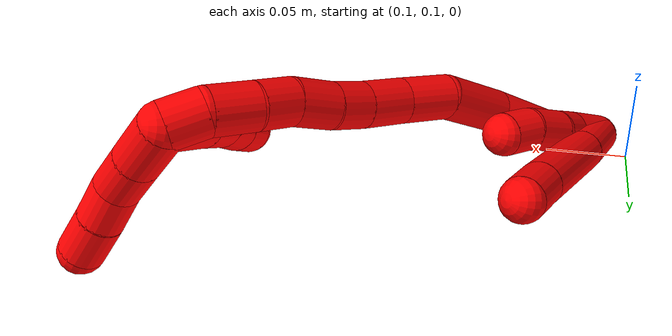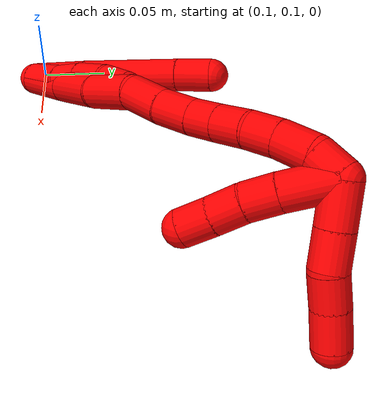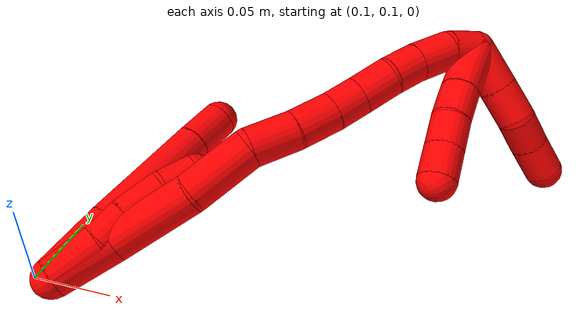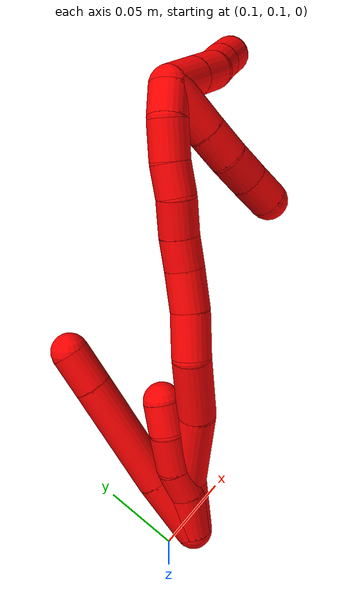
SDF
<sdf version="1.7">
 <world name="default">
  <model name="photoneo_s_sensor">
   <static>1</static>
   <pose>0 0 2 1.57079 1.57079 3.14159</pose>
   <link name="link">
    <inertial><mass>0.1</mass></inertial>
    <sensor name="sensor" type="depth">
     <update_rate>30</update_rate>
     <camera>
      <horizontal_fov>1.22</horizontal_fov>
      <image><width>1920</width><height>1200</height><format>B8G8R8</format></image>
      <clip><near>0.1</near><far>4</far></clip>
      <depth_camera><output>points</output></depth_camera>
     </camera>
     <plugin name="camera_plugin" filename="libgazebo_ros_depth_camera.so">
      <baseline>0.2</baseline>
      <alwaysOn>1</alwaysOn>
      <updateRate>0.0</updateRate>
      <cameraName>camera_ir</cameraName>
      <imageTopicName>/camera/color/image_raw</imageTopicName>
      <cameraInfoTopicName>/camera/color/camera_info</cameraInfoTopicName>
      <depthImageTopicName>/camera/depth/image_raw</depthImageTopicName>
      <depthImageCameraInfoTopicName>/camera/depth/camera_info</depthImageCameraInfoTopicName>
      <pointCloudTopicName>/camera/depth/points</pointCloudTopicName>
      <frameName>fr_optical</frameName>
      <pointCloudCutoff>0.1</pointCloudCutoff>
      <pointCloudCutoffMax>2.0</pointCloudCutoffMax>
      <distortionK1>0</distortionK1>
      <distortionK2>0</distortionK2>
      <distortionK3>0</distortionK3>
      <distortionT1>0</distortionT1>
      <distortionT2>0</distortionT2>
      <CxPrime>0</CxPrime>
      <Cx>0</Cx>
      <Cy>0</Cy>
      <focalLength>0</focalLength>
      <hackBaseline>0</hackBaseline>
     </plugin>
    </sensor>
   </link>
  </model>
  <model name="bin">
   <static>1</static>
   <link name="bottom">
    <collision name="collision-bottom">
     <pose>0 0 -0.01 0 -0 0</pose>
     <geometry><box><size>0.8 0.6 0.02</size></box></geometry>
     <surface>
      <friction><ode><mu>100</mu><mu2>100</mu2></ode></friction>
      <contact><collide_bitmask>65535</collide_bitmask></contact>
     </surface>
    </collision>
   </link>
   <link name="west_wall">
    <collision name="collision-west_wall">
     <pose>-0.41 0 0.1 0 -0 0</pose>
     <geometry><box><size>0.02 0.6 0.2</size></box></geometry>
     <surface>
      <friction><ode><mu>100</mu><mu2>100</mu2></ode></friction>
      <contact><collide_bitmask>65535</collide_bitmask></contact>
     </surface>
    </collision>
   </link>
   <link name="east_wall">
    <collision name="collision-east_wall">
     <pose>0.41 0 0.1 0 -0 0</pose>
     <geometry><box><size>0.02 0.6 0.2</size></box></geometry>
     <surface>
      <friction><ode><mu>100</mu><mu2>100</mu2></ode></friction>
      <contact><collide_bitmask>65535</collide_bitmask></contact>
     </surface>
    </collision>
   </link>
   <link name="south_wall">
    <collision name="collision-south_wall">
     <pose>0 -0.31 0.1 0 -0 0</pose>
     <geometry><box><size>0.8 0.02 0.2</size></box></geometry>
     <surface>
      <friction><ode><mu>100</mu><mu2>100</mu2></ode></friction>
      <contact><collide_bitmask>65535</collide_bitmask></contact>
     </surface>
    </collision>
   </link>
   <link name="north_wall">
    <collision name="collision-north_wall">
     <pose>0 0.31 0.1 0 -0 0</pose>
     <geometry><box><size>0.8 0.02 0.2</size></box></geometry>
     <surface>
      <friction><ode><mu>100</mu><mu2>100</mu2></ode></friction>
      <contact><collide_bitmask>65535</collide_bitmask></contact>
     </surface>
    </collision>
   </link>
  </model>
  <model name="2">
   <static>0</static>
   <link name="2">
    <collision name="collision-cylinder-e_1_2_8">
     <pose>-0.009327 -0.004561 0.019637 0.228221 -0.433336 -0.050445</pose>
     <geometry><cylinder><radius>0.0125</radius><length>0.044425</length></cylinder></geometry>
     <surface>
      <friction><ode><mu>1.16</mu><mu2>1.16</mu2><slip1>0</slip1><slip2>0</slip2></ode></friction>
      <contact><ode><kp>1e+06</kp><kd>1</kd><max_vel>0</max_vel><min_depth>0.001</min_depth></ode></contact>
     </surface>
    </collision>
    <visual name="visual-cylinder-e_1_2_8">
     <pose>-0.009327 -0.004561 0.019637 0.228221 -0.433336 -0.050445</pose>
     <geometry><cylinder><radius>0.0125</radius><length>0.044425</length></cylinder></geometry>
     <material><ambient>1 0 0 1</ambient></material>
    </visual>
    <collision name="collision-cylinder-e_2_8_9">
     <pose>-0.033545 -0.015985 0.075015 0.189716 -0.388379 -0.037419</pose>
     <geometry><cylinder><radius>0.0125</radius><length>0.078646</length></cylinder></geometry>
     <surface>
      <friction><ode><mu>1.16</mu><mu2>1.16</mu2><slip1>0</slip1><slip2>0</slip2></ode></friction>
      <contact><ode><kp>1e+06</kp><kd>1</kd><max_vel>0</max_vel><min_depth>0.001</min_depth></ode></contact>
     </surface>
    </collision>
    <visual name="visual-cylinder-e_2_8_9">
     <pose>-0.033545 -0.015985 0.075015 0.189716 -0.388379 -0.037419</pose>
     <geometry><cylinder><radius>0.0125</radius><length>0.078646</length></cylinder></geometry>
     <material><ambient>1 0 0 1</ambient></material>
    </visual>
    <collision name="collision-cylinder-e_3_9_6">
     <pose>-0.053892 -0.024905 0.122893 0.16787 -0.417151 -0.03561</pose>
     <geometry><cylinder><radius>0.0125</radius><length>0.026929</length></cylinder></geometry>
     <surface>
      <friction><ode><mu>1.16</mu><mu2>1.16</mu2><slip1>0</slip1><slip2>0</slip2></ode></friction>
      <contact><ode><kp>1e+06</kp><kd>1</kd><max_vel>0</max_vel><min_depth>0.001</min_depth></ode></contact>
     </surface>
    </collision>
    <visual name="visual-cylinder-e_3_9_6">
     <pose>-0.053892 -0.024905 0.122893 0.16787 -0.417151 -0.03561</pose>
     <geometry><cylinder><radius>0.0125</radius><length>0.026929</length></cylinder></geometry>
     <material><ambient>1 0 0 1</ambient></material>
    </visual>
    <collision name="collision-cylinder-e_1_2_10">
     <pose>0.000192 -0.001451 0.015579 0.092842 0.012246 0.000569</pose>
     <geometry><cylinder><radius>0.0125</radius><length>0.031295</length></cylinder></geometry>
     <surface>
      <friction><ode><mu>1.16</mu><mu2>1.16</mu2><slip1>0</slip1><slip2>0</slip2></ode></friction>
      <contact><ode><kp>1e+06</kp><kd>1</kd><max_vel>0</max_vel><min_depth>0.001</min_depth></ode></contact>
     </surface>
    </collision>
    <visual name="visual-cylinder-e_1_2_10">
     <pose>0.000192 -0.001451 0.015579 0.092842 0.012246 0.000569</pose>
     <geometry><cylinder><radius>0.0125</radius><length>0.031295</length></cylinder></geometry>
     <material><ambient>1 0 0 1</ambient></material>
    </visual>
    <collision name="collision-cylinder-e_2_10_11">
     <pose>-0.001246 -0.005367 0.041183 0.241152 -0.15649 -0.018999</pose>
     <geometry><cylinder><radius>0.0125</radius><length>0.020903</length></cylinder></geometry>
     <surface>
      <friction><ode><mu>1.16</mu><mu2>1.16</mu2><slip1>0</slip1><slip2>0</slip2></ode></friction>
      <contact><ode><kp>1e+06</kp><kd>1</kd><max_vel>0</max_vel><min_depth>0.001</min_depth></ode></contact>
     </surface>
    </collision>
    <visual name="visual-cylinder-e_2_10_11">
     <pose>-0.001246 -0.005367 0.041183 0.241152 -0.15649 -0.018999</pose>
     <geometry><cylinder><radius>0.0125</radius><length>0.020903</length></cylinder></geometry>
     <material><ambient>1 0 0 1</ambient></material>
    </visual>
    <collision name="collision-cylinder-e_3_11_12">
     <pose>-0.003078 -0.009035 0.064644 0.089284 -0.01509 -0.000674</pose>
     <geometry><cylinder><radius>0.0125</radius><length>0.026982</length></cylinder></geometry>
     <surface>
      <friction><ode><mu>1.16</mu><mu2>1.16</mu2><slip1>0</slip1><slip2>0</slip2></ode></friction>
      <contact><ode><kp>1e+06</kp><kd>1</kd><max_vel>0</max_vel><min_depth>0.001</min_depth></ode></contact>
     </surface>
    </collision>
    <visual name="visual-cylinder-e_3_11_12">
     <pose>-0.003078 -0.009035 0.064644 0.089284 -0.01509 -0.000674</pose>
     <geometry><cylinder><radius>0.0125</radius><length>0.026982</length></cylinder></geometry>
     <material><ambient>1 0 0 1</ambient></material>
    </visual>
    <collision name="collision-cylinder-e_4_12_5">
     <pose>-0.004548 -0.009294 0.088369 -0.091463 -0.121965 0.005588</pose>
     <geometry><cylinder><radius>0.0125</radius><length>0.02082</length></cylinder></geometry>
     <surface>
      <friction><ode><mu>1.16</mu><mu2>1.16</mu2><slip1>0</slip1><slip2>0</slip2></ode></friction>
      <contact><ode><kp>1e+06</kp><kd>1</kd><max_vel>0</max_vel><min_depth>0.001</min_depth></ode></contact>
     </surface>
    </collision>
    <visual name="visual-cylinder-e_4_12_5">
     <pose>-0.004548 -0.009294 0.088369 -0.091463 -0.121965 0.005588</pose>
     <geometry><cylinder><radius>0.0125</radius><length>0.02082</length></cylinder></geometry>
     <material><ambient>1 0 0 1</ambient></material>
    </visual>
    <collision name="collision-cylinder-e_1_2_13">
     <pose>0.000124 0.000237 0.019199 -0.012369 0.006435 -4e-05</pose>
     <geometry><cylinder><radius>0.0125</radius><length>0.038402</length></cylinder></geometry>
     <surface>
      <friction><ode><mu>1.16</mu><mu2>1.16</mu2><slip1>0</slip1><slip2>0</slip2></ode></friction>
      <contact><ode><kp>1e+06</kp><kd>1</kd><max_vel>0</max_vel><min_depth>0.001</min_depth></ode></contact>
     </surface>
    </collision>
    <visual name="visual-cylinder-e_1_2_13">
     <pose>0.000124 0.000237 0.019199 -0.012369 0.006435 -4e-05</pose>
     <geometry><cylinder><radius>0.0125</radius><length>0.038402</length></cylinder></geometry>
     <material><ambient>1 0 0 1</ambient></material>
    </visual>
    <collision name="collision-cylinder-e_2_13_14">
     <pose>0.007783 -0.001074 0.063728 0.061061 0.288656 0.008877</pose>
     <geometry><cylinder><radius>0.0125</radius><length>0.052944</length></cylinder></geometry>
     <surface>
      <friction><ode><mu>1.16</mu><mu2>1.16</mu2><slip1>0</slip1><slip2>0</slip2></ode></friction>
      <contact><ode><kp>1e+06</kp><kd>1</kd><max_vel>0</max_vel><min_depth>0.001</min_depth></ode></contact>
     </surface>
    </collision>
    <visual name="visual-cylinder-e_2_13_14">
     <pose>0.007783 -0.001074 0.063728 0.061061 0.288656 0.008877</pose>
     <geometry><cylinder><radius>0.0125</radius><length>0.052944</length></cylinder></geometry>
     <material><ambient>1 0 0 1</ambient></material>
    </visual>
    <collision name="collision-cylinder-e_3_14_15">
     <pose>0.017706 -0.005501 0.109845 0.137628 0.11329 0.007817</pose>
     <geometry><cylinder><radius>0.0125</radius><length>0.042243</length></cylinder></geometry>
     <surface>
      <friction><ode><mu>1.16</mu><mu2>1.16</mu2><slip1>0</slip1><slip2>0</slip2></ode></friction>
      <contact><ode><kp>1e+06</kp><kd>1</kd><max_vel>0</max_vel><min_depth>0.001</min_depth></ode></contact>
     </surface>
    </collision>
    <visual name="visual-cylinder-e_3_14_15">
     <pose>0.017706 -0.005501 0.109845 0.137628 0.11329 0.007817</pose>
     <geometry><cylinder><radius>0.0125</radius><length>0.042243</length></cylinder></geometry>
     <material><ambient>1 0 0 1</ambient></material>
    </visual>
    <collision name="collision-cylinder-e_4_15_16">
     <pose>0.020123 -0.00588 0.145281 -0.169054 0.001956 -0.000166</pose>
     <geometry><cylinder><radius>0.0125</radius><length>0.02972</length></cylinder></geometry>
     <surface>
      <friction><ode><mu>1.16</mu><mu2>1.16</mu2><slip1>0</slip1><slip2>0</slip2></ode></friction>
      <contact><ode><kp>1e+06</kp><kd>1</kd><max_vel>0</max_vel><min_depth>0.001</min_depth></ode></contact>
     </surface>
    </collision>
    <visual name="visual-cylinder-e_4_15_16">
     <pose>0.020123 -0.00588 0.145281 -0.169054 0.001956 -0.000166</pose>
     <geometry><cylinder><radius>0.0125</radius><length>0.02972</length></cylinder></geometry>
     <material><ambient>1 0 0 1</ambient></material>
    </visual>
    <collision name="collision-cylinder-e_5_16_17">
     <pose>0.019197 -0.002261 0.172995 -0.085465 -0.072696 0.00311</pose>
     <geometry><cylinder><radius>0.0125</radius><length>0.026299</length></cylinder></geometry>
     <surface>
      <friction><ode><mu>1.16</mu><mu2>1.16</mu2><slip1>0</slip1><slip2>0</slip2></ode></friction>
      <contact><ode><kp>1e+06</kp><kd>1</kd><max_vel>0</max_vel><min_depth>0.001</min_depth></ode></contact>
     </surface>
    </collision>
    <visual name="visual-cylinder-e_5_16_17">
     <pose>0.019197 -0.002261 0.172995 -0.085465 -0.072696 0.00311</pose>
     <geometry><cylinder><radius>0.0125</radius><length>0.026299</length></cylinder></geometry>
     <material><ambient>1 0 0 1</ambient></material>
    </visual>
    <collision name="collision-cylinder-e_6_17_18">
     <pose>0.017746 -0.001075 0.196163 -0.00651 -0.049008 0.00016</pose>
     <geometry><cylinder><radius>0.0125</radius><length>0.020227</length></cylinder></geometry>
     <surface>
      <friction><ode><mu>1.16</mu><mu2>1.16</mu2><slip1>0</slip1><slip2>0</slip2></ode></friction>
      <contact><ode><kp>1e+06</kp><kd>1</kd><max_vel>0</max_vel><min_depth>0.001</min_depth></ode></contact>
     </surface>
    </collision>
    <visual name="visual-cylinder-e_6_17_18">
     <pose>0.017746 -0.001075 0.196163 -0.00651 -0.049008 0.00016</pose>
     <geometry><cylinder><radius>0.0125</radius><length>0.020227</length></cylinder></geometry>
     <material><ambient>1 0 0 1</ambient></material>
    </visual>
    <collision name="collision-cylinder-e_7_18_19">
     <pose>0.018045 -0.001305 0.21814 0.024884 0.066782 0.000831</pose>
     <geometry><cylinder><radius>0.0125</radius><length>0.023811</length></cylinder></geometry>
     <surface>
      <friction><ode><mu>1.16</mu><mu2>1.16</mu2><slip1>0</slip1><slip2>0</slip2></ode></friction>
      <contact><ode><kp>1e+06</kp><kd>1</kd><max_vel>0</max_vel><min_depth>0.001</min_depth></ode></contact>
     </surface>
    </collision>
    <visual name="visual-cylinder-e_7_18_19">
     <pose>0.018045 -0.001305 0.21814 0.024884 0.066782 0.000831</pose>
     <geometry><cylinder><radius>0.0125</radius><length>0.023811</length></cylinder></geometry>
     <material><ambient>1 0 0 1</ambient></material>
    </visual>
    <collision name="collision-cylinder-e_8_19_20">
     <pose>0.017703 -0.00094 0.240345 -0.063924 -0.109353 0.0035</pose>
     <geometry><cylinder><radius>0.0125</radius><length>0.020826</length></cylinder></geometry>
     <surface>
      <friction><ode><mu>1.16</mu><mu2>1.16</mu2><slip1>0</slip1><slip2>0</slip2></ode></friction>
      <contact><ode><kp>1e+06</kp><kd>1</kd><max_vel>0</max_vel><min_depth>0.001</min_depth></ode></contact>
     </surface>
    </collision>
    <visual name="visual-cylinder-e_8_19_20">
     <pose>0.017703 -0.00094 0.240345 -0.063924 -0.109353 0.0035</pose>
     <geometry><cylinder><radius>0.0125</radius><length>0.020826</length></cylinder></geometry>
     <material><ambient>1 0 0 1</ambient></material>
    </visual>
    <collision name="collision-cylinder-e_9_20_21">
     <pose>0.016176 0.001759 0.262994 -0.163876 -0.031266 0.002568</pose>
     <geometry><cylinder><radius>0.0125</radius><length>0.024986</length></cylinder></geometry>
     <surface>
      <friction><ode><mu>1.16</mu><mu2>1.16</mu2><slip1>0</slip1><slip2>0</slip2></ode></friction>
      <contact><ode><kp>1e+06</kp><kd>1</kd><max_vel>0</max_vel><min_depth>0.001</min_depth></ode></contact>
     </surface>
    </collision>
    <visual name="visual-cylinder-e_9_20_21">
     <pose>0.016176 0.001759 0.262994 -0.163876 -0.031266 0.002568</pose>
     <geometry><cylinder><radius>0.0125</radius><length>0.024986</length></cylinder></geometry>
     <material><ambient>1 0 0 1</ambient></material>
    </visual>
    <collision name="collision-cylinder-e_10_21_1">
     <pose>0.014936 0.008525 0.284392 -0.480228 -0.082867 0.0203</pose>
     <geometry><cylinder><radius>0.0125</radius><length>0.020542</length></cylinder></geometry>
     <surface>
      <friction><ode><mu>1.16</mu><mu2>1.16</mu2><slip1>0</slip1><slip2>0</slip2></ode></friction>
      <contact><ode><kp>1e+06</kp><kd>1</kd><max_vel>0</max_vel><min_depth>0.001</min_depth></ode></contact>
     </surface>
    </collision>
    <visual name="visual-cylinder-e_10_21_1">
     <pose>0.014936 0.008525 0.284392 -0.480228 -0.082867 0.0203</pose>
     <geometry><cylinder><radius>0.0125</radius><length>0.020542</length></cylinder></geometry>
     <material><ambient>1 0 0 1</ambient></material>
    </visual>
    <collision name="collision-cylinder-e_1_1_22">
     <pose>0.014542 0.027588 0.294459 -1.50193 0.031771 -0.029656</pose>
     <geometry><cylinder><radius>0.0125</radius><length>0.028752</length></cylinder></geometry>
     <surface>
      <friction><ode><mu>1.16</mu><mu2>1.16</mu2><slip1>0</slip1><slip2>0</slip2></ode></friction>
      <contact><ode><kp>1e+06</kp><kd>1</kd><max_vel>0</max_vel><min_depth>0.001</min_depth></ode></contact>
     </surface>
    </collision>
    <visual name="visual-cylinder-e_1_1_22">
     <pose>0.014542 0.027588 0.294459 -1.50193 0.031771 -0.029656</pose>
     <geometry><cylinder><radius>0.0125</radius><length>0.028752</length></cylinder></geometry>
     <material><ambient>1 0 0 1</ambient></material>
    </visual>
    <collision name="collision-cylinder-e_2_22_23">
     <pose>0.01536 0.054141 0.296194 -1.50974 0.029472 -0.027726</pose>
     <geometry><cylinder><radius>0.0125</radius><length>0.024492</length></cylinder></geometry>
     <surface>
      <friction><ode><mu>1.16</mu><mu2>1.16</mu2><slip1>0</slip1><slip2>0</slip2></ode></friction>
      <contact><ode><kp>1e+06</kp><kd>1</kd><max_vel>0</max_vel><min_depth>0.001</min_depth></ode></contact>
     </surface>
    </collision>
    <visual name="visual-cylinder-e_2_22_23">
     <pose>0.01536 0.054141 0.296194 -1.50974 0.029472 -0.027726</pose>
     <geometry><cylinder><radius>0.0125</radius><length>0.024492</length></cylinder></geometry>
     <material><ambient>1 0 0 1</ambient></material>
    </visual>
    <collision name="collision-cylinder-e_3_23_24">
     <pose>0.013029 0.077049 0.298556 -1.42091 -0.244027 0.210211</pose>
     <geometry><cylinder><radius>0.0125</radius><length>0.022282</length></cylinder></geometry>
     <surface>
      <friction><ode><mu>1.16</mu><mu2>1.16</mu2><slip1>0</slip1><slip2>0</slip2></ode></friction>
      <contact><ode><kp>1e+06</kp><kd>1</kd><max_vel>0</max_vel><min_depth>0.001</min_depth></ode></contact>
     </surface>
    </collision>
    <visual name="visual-cylinder-e_3_23_24">
     <pose>0.013029 0.077049 0.298556 -1.42091 -0.244027 0.210211</pose>
     <geometry><cylinder><radius>0.0125</radius><length>0.022282</length></cylinder></geometry>
     <material><ambient>1 0 0 1</ambient></material>
    </visual>
    <collision name="collision-cylinder-e_4_24_4">
     <pose>0.008184 0.099657 0.301918 -1.42512 -0.176908 0.152948</pose>
     <geometry><cylinder><radius>0.0125</radius><length>0.024474</length></cylinder></geometry>
     <surface>
      <friction><ode><mu>1.16</mu><mu2>1.16</mu2><slip1>0</slip1><slip2>0</slip2></ode></friction>
      <contact><ode><kp>1e+06</kp><kd>1</kd><max_vel>0</max_vel><min_depth>0.001</min_depth></ode></contact>
     </surface>
    </collision>
    <visual name="visual-cylinder-e_4_24_4">
     <pose>0.008184 0.099657 0.301918 -1.42512 -0.176908 0.152948</pose>
     <geometry><cylinder><radius>0.0125</radius><length>0.024474</length></cylinder></geometry>
     <material><ambient>1 0 0 1</ambient></material>
    </visual>
    <collision name="collision-cylinder-e_1_1_25">
     <pose>0.020552 0.020823 0.278578 -2.67136 0.369321 -1.32455</pose>
     <geometry><cylinder><radius>0.0125</radius><length>0.035826</length></cylinder></geometry>
     <surface>
      <friction><ode><mu>1.16</mu><mu2>1.16</mu2><slip1>0</slip1><slip2>0</slip2></ode></friction>
      <contact><ode><kp>1e+06</kp><kd>1</kd><max_vel>0</max_vel><min_depth>0.001</min_depth></ode></contact>
     </surface>
    </collision>
    <visual name="visual-cylinder-e_1_1_25">
     <pose>0.020552 0.020823 0.278578 -2.67136 0.369321 -1.32455</pose>
     <geometry><cylinder><radius>0.0125</radius><length>0.035826</length></cylinder></geometry>
     <material><ambient>1 0 0 1</ambient></material>
    </visual>
    <collision name="collision-cylinder-e_2_25_26">
     <pose>0.030813 0.033537 0.254786 -2.6174 0.353602 -1.17508</pose>
     <geometry><cylinder><radius>0.0125</radius><length>0.021916</length></cylinder></geometry>
     <surface>
      <friction><ode><mu>1.16</mu><mu2>1.16</mu2><slip1>0</slip1><slip2>0</slip2></ode></friction>
      <contact><ode><kp>1e+06</kp><kd>1</kd><max_vel>0</max_vel><min_depth>0.001</min_depth></ode></contact>
     </surface>
    </collision>
    <visual name="visual-cylinder-e_2_25_26">
     <pose>0.030813 0.033537 0.254786 -2.6174 0.353602 -1.17508</pose>
     <geometry><cylinder><radius>0.0125</radius><length>0.021916</length></cylinder></geometry>
     <material><ambient>1 0 0 1</ambient></material>
    </visual>
    <collision name="collision-cylinder-e_3_26_27">
     <pose>0.037671 0.044738 0.23784 -2.49642 0.295297 -0.837299</pose>
     <geometry><cylinder><radius>0.0125</radius><length>0.021053</length></cylinder></geometry>
     <surface>
      <friction><ode><mu>1.16</mu><mu2>1.16</mu2><slip1>0</slip1><slip2>0</slip2></ode></friction>
      <contact><ode><kp>1e+06</kp><kd>1</kd><max_vel>0</max_vel><min_depth>0.001</min_depth></ode></contact>
     </surface>
    </collision>
    <visual name="visual-cylinder-e_3_26_27">
     <pose>0.037671 0.044738 0.23784 -2.49642 0.295297 -0.837299</pose>
     <geometry><cylinder><radius>0.0125</radius><length>0.021053</length></cylinder></geometry>
     <material><ambient>1 0 0 1</ambient></material>
    </visual>
    <collision name="collision-cylinder-e_4_27_3">
     <pose>0.044249 0.056619 0.221661 -2.52003 0.337903 -0.976401</pose>
     <geometry><cylinder><radius>0.0125</radius><length>0.021205</length></cylinder></geometry>
     <surface>
      <friction><ode><mu>1.16</mu><mu2>1.16</mu2><slip1>0</slip1><slip2>0</slip2></ode></friction>
      <contact><ode><kp>1e+06</kp><kd>1</kd><max_vel>0</max_vel><min_depth>0.001</min_depth></ode></contact>
     </surface>
    </collision>
    <visual name="visual-cylinder-e_4_27_3">
     <pose>0.044249 0.056619 0.221661 -2.52003 0.337903 -0.976401</pose>
     <geometry><cylinder><radius>0.0125</radius><length>0.021205</length></cylinder></geometry>
     <material><ambient>1 0 0 1</ambient></material>
    </visual>
    <collision name="collision-sphere-3">
     <pose>0.047764 0.062444 0.213529 0 -0 0</pose>
     <geometry><sphere><radius>0.0125</radius></sphere></geometry>
     <surface>
      <friction><ode><mu>1.16</mu><mu2>1.16</mu2><slip1>0</slip1><slip2>0</slip2></ode></friction>
      <contact><ode><kp>1e+06</kp><kd>1</kd><max_vel>0</max_vel><min_depth>0.001</min_depth></ode></contact>
     </surface>
    </collision>
    <visual name="visual-sphere-3">
     <pose>0.047764 0.062444 0.213529 0 -0 0</pose>
     <geometry><sphere><radius>0.0125</radius></sphere></geometry>
     <material><ambient>1 0 0 1</ambient></material>
    </visual>
    <collision name="collision-sphere-27">
     <pose>0.040734 0.050794 0.229793 0 -0 0</pose>
     <geometry><sphere><radius>0.0125</radius></sphere></geometry>
     <surface>
      <friction><ode><mu>1.16</mu><mu2>1.16</mu2><slip1>0</slip1><slip2>0</slip2></ode></friction>
      <contact><ode><kp>1e+06</kp><kd>1</kd><max_vel>0</max_vel><min_depth>0.001</min_depth></ode></contact>
     </surface>
    </collision>
    <visual name="visual-sphere-27">
     <pose>0.040734 0.050794 0.229793 0 -0 0</pose>
     <geometry><sphere><radius>0.0125</radius></sphere></geometry>
     <material><ambient>1 0 0 1</ambient></material>
    </visual>
    <collision name="collision-sphere-26">
     <pose>0.034607 0.038682 0.245886 0 -0 0</pose>
     <geometry><sphere><radius>0.0125</radius></sphere></geometry>
     <surface>
      <friction><ode><mu>1.16</mu><mu2>1.16</mu2><slip1>0</slip1><slip2>0</slip2></ode></friction>
      <contact><ode><kp>1e+06</kp><kd>1</kd><max_vel>0</max_vel><min_depth>0.001</min_depth></ode></contact>
     </surface>
    </collision>
    <visual name="visual-sphere-26">
     <pose>0.034607 0.038682 0.245886 0 -0 0</pose>
     <geometry><sphere><radius>0.0125</radius></sphere></geometry>
     <material><ambient>1 0 0 1</ambient></material>
    </visual>
    <collision name="collision-sphere-25">
     <pose>0.027018 0.028392 0.263686 0 -0 0</pose>
     <geometry><sphere><radius>0.0125</radius></sphere></geometry>
     <surface>
      <friction><ode><mu>1.16</mu><mu2>1.16</mu2><slip1>0</slip1><slip2>0</slip2></ode></friction>
      <contact><ode><kp>1e+06</kp><kd>1</kd><max_vel>0</max_vel><min_depth>0.001</min_depth></ode></contact>
     </surface>
    </collision>
    <visual name="visual-sphere-25">
     <pose>0.027018 0.028392 0.263686 0 -0 0</pose>
     <geometry><sphere><radius>0.0125</radius></sphere></geometry>
     <material><ambient>1 0 0 1</ambient></material>
    </visual>
    <collision name="collision-sphere-4">
     <pose>0.00603 0.111575 0.303667 0 -0 0</pose>
     <geometry><sphere><radius>0.0125</radius></sphere></geometry>
     <surface>
      <friction><ode><mu>1.16</mu><mu2>1.16</mu2><slip1>0</slip1><slip2>0</slip2></ode></friction>
      <contact><ode><kp>1e+06</kp><kd>1</kd><max_vel>0</max_vel><min_depth>0.001</min_depth></ode></contact>
     </surface>
    </collision>
    <visual name="visual-sphere-4">
     <pose>0.00603 0.111575 0.303667 0 -0 0</pose>
     <geometry><sphere><radius>0.0125</radius></sphere></geometry>
     <material><ambient>1 0 0 1</ambient></material>
    </visual>
    <collision name="collision-sphere-24">
     <pose>0.010337 0.087738 0.30017 0 -0 0</pose>
     <geometry><sphere><radius>0.0125</radius></sphere></geometry>
     <surface>
      <friction><ode><mu>1.16</mu><mu2>1.16</mu2><slip1>0</slip1><slip2>0</slip2></ode></friction>
      <contact><ode><kp>1e+06</kp><kd>1</kd><max_vel>0</max_vel><min_depth>0.001</min_depth></ode></contact>
     </surface>
    </collision>
    <visual name="visual-sphere-24">
     <pose>0.010337 0.087738 0.30017 0 -0 0</pose>
     <geometry><sphere><radius>0.0125</radius></sphere></geometry>
     <material><ambient>1 0 0 1</ambient></material>
    </visual>
    <collision name="collision-sphere-23">
     <pose>0.015721 0.066359 0.296941 0 -0 0</pose>
     <geometry><sphere><radius>0.0125</radius></sphere></geometry>
     <surface>
      <friction><ode><mu>1.16</mu><mu2>1.16</mu2><slip1>0</slip1><slip2>0</slip2></ode></friction>
      <contact><ode><kp>1e+06</kp><kd>1</kd><max_vel>0</max_vel><min_depth>0.001</min_depth></ode></contact>
     </surface>
    </collision>
    <visual name="visual-sphere-23">
     <pose>0.015721 0.066359 0.296941 0 -0 0</pose>
     <geometry><sphere><radius>0.0125</radius></sphere></geometry>
     <material><ambient>1 0 0 1</ambient></material>
    </visual>
    <collision name="collision-sphere-22">
     <pose>0.014999 0.041923 0.295447 0 -0 0</pose>
     <geometry><sphere><radius>0.0125</radius></sphere></geometry>
     <surface>
      <friction><ode><mu>1.16</mu><mu2>1.16</mu2><slip1>0</slip1><slip2>0</slip2></ode></friction>
      <contact><ode><kp>1e+06</kp><kd>1</kd><max_vel>0</max_vel><min_depth>0.001</min_depth></ode></contact>
     </surface>
    </collision>
    <visual name="visual-sphere-22">
     <pose>0.014999 0.041923 0.295447 0 -0 0</pose>
     <geometry><sphere><radius>0.0125</radius></sphere></geometry>
     <material><ambient>1 0 0 1</ambient></material>
    </visual>
    <collision name="collision-sphere-1">
     <pose>0.014086 0.013254 0.29347 0 -0 0</pose>
     <geometry><sphere><radius>0.0125</radius></sphere></geometry>
     <surface>
      <friction><ode><mu>1.16</mu><mu2>1.16</mu2><slip1>0</slip1><slip2>0</slip2></ode></friction>
      <contact><ode><kp>1e+06</kp><kd>1</kd><max_vel>0</max_vel><min_depth>0.001</min_depth></ode></contact>
     </surface>
    </collision>
    <visual name="visual-sphere-1">
     <pose>0.014086 0.013254 0.29347 0 -0 0</pose>
     <geometry><sphere><radius>0.0125</radius></sphere></geometry>
     <material><ambient>1 0 0 1</ambient></material>
    </visual>
    <collision name="collision-sphere-21">
     <pose>0.015786 0.003796 0.275314 0 -0 0</pose>
     <geometry><sphere><radius>0.0125</radius></sphere></geometry>
     <surface>
      <friction><ode><mu>1.16</mu><mu2>1.16</mu2><slip1>0</slip1><slip2>0</slip2></ode></friction>
      <contact><ode><kp>1e+06</kp><kd>1</kd><max_vel>0</max_vel><min_depth>0.001</min_depth></ode></contact>
     </surface>
    </collision>
    <visual name="visual-sphere-21">
     <pose>0.015786 0.003796 0.275314 0 -0 0</pose>
     <geometry><sphere><radius>0.0125</radius></sphere></geometry>
     <material><ambient>1 0 0 1</ambient></material>
    </visual>
    <collision name="collision-sphere-11">
     <pose>-0.002875 -0.007832 0.051208 0 -0 0</pose>
     <geometry><sphere><radius>0.0125</radius></sphere></geometry>
     <surface>
      <friction><ode><mu>1.16</mu><mu2>1.16</mu2><slip1>0</slip1><slip2>0</slip2></ode></friction>
      <contact><ode><kp>1e+06</kp><kd>1</kd><max_vel>0</max_vel><min_depth>0.001</min_depth></ode></contact>
     </surface>
    </collision>
    <visual name="visual-sphere-11">
     <pose>-0.002875 -0.007832 0.051208 0 -0 0</pose>
     <geometry><sphere><radius>0.0125</radius></sphere></geometry>
     <material><ambient>1 0 0 1</ambient></material>
    </visual>
    <collision name="collision-sphere-10">
     <pose>0.000383 -0.002901 0.031157 0 -0 0</pose>
     <geometry><sphere><radius>0.0125</radius></sphere></geometry>
     <surface>
      <friction><ode><mu>1.16</mu><mu2>1.16</mu2><slip1>0</slip1><slip2>0</slip2></ode></friction>
      <contact><ode><kp>1e+06</kp><kd>1</kd><max_vel>0</max_vel><min_depth>0.001</min_depth></ode></contact>
     </surface>
    </collision>
    <visual name="visual-sphere-10">
     <pose>0.000383 -0.002901 0.031157 0 -0 0</pose>
     <geometry><sphere><radius>0.0125</radius></sphere></geometry>
     <material><ambient>1 0 0 1</ambient></material>
    </visual>
    <collision name="collision-sphere-6">
     <pose>-0.059347 -0.026962 0.13503 0 -0 0</pose>
     <geometry><sphere><radius>0.0125</radius></sphere></geometry>
     <surface>
      <friction><ode><mu>1.16</mu><mu2>1.16</mu2><slip1>0</slip1><slip2>0</slip2></ode></friction>
      <contact><ode><kp>1e+06</kp><kd>1</kd><max_vel>0</max_vel><min_depth>0.001</min_depth></ode></contact>
     </surface>
    </collision>
    <visual name="visual-sphere-6">
     <pose>-0.059347 -0.026962 0.13503 0 -0 0</pose>
     <geometry><sphere><radius>0.0125</radius></sphere></geometry>
     <material><ambient>1 0 0 1</ambient></material>
    </visual>
    <collision name="collision-sphere-9">
     <pose>-0.048437 -0.022848 0.110756 0 -0 0</pose>
     <geometry><sphere><radius>0.0125</radius></sphere></geometry>
     <surface>
      <friction><ode><mu>1.16</mu><mu2>1.16</mu2><slip1>0</slip1><slip2>0</slip2></ode></friction>
      <contact><ode><kp>1e+06</kp><kd>1</kd><max_vel>0</max_vel><min_depth>0.001</min_depth></ode></contact>
     </surface>
    </collision>
    <visual name="visual-sphere-9">
     <pose>-0.048437 -0.022848 0.110756 0 -0 0</pose>
     <geometry><sphere><radius>0.0125</radius></sphere></geometry>
     <material><ambient>1 0 0 1</ambient></material>
    </visual>
    <collision name="collision-sphere-2">
     <geometry><sphere><radius>0.0125</radius></sphere></geometry>
     <surface>
      <friction><ode><mu>1.16</mu><mu2>1.16</mu2><slip1>0</slip1><slip2>0</slip2></ode></friction>
      <contact><ode><kp>1e+06</kp><kd>1</kd><max_vel>0</max_vel><min_depth>0.001</min_depth></ode></contact>
     </surface>
    </collision>
    <visual name="visual-sphere-2">
     <geometry><sphere><radius>0.0125</radius></sphere></geometry>
     <material><ambient>1 0 0 1</ambient></material>
    </visual>
    <collision name="collision-sphere-19">
     <pose>0.01884 -0.001601 0.230015 0 -0 0</pose>
     <geometry><sphere><radius>0.0125</radius></sphere></geometry>
     <surface>
      <friction><ode><mu>1.16</mu><mu2>1.16</mu2><slip1>0</slip1><slip2>0</slip2></ode></friction>
      <contact><ode><kp>1e+06</kp><kd>1</kd><max_vel>0</max_vel><min_depth>0.001</min_depth></ode></contact>
     </surface>
    </collision>
    <visual name="visual-sphere-19">
     <pose>0.01884 -0.001601 0.230015 0 -0 0</pose>
     <geometry><sphere><radius>0.0125</radius></sphere></geometry>
     <material><ambient>1 0 0 1</ambient></material>
    </visual>
    <collision name="collision-sphere-8">
     <pose>-0.018654 -0.009122 0.039274 0 -0 0</pose>
     <geometry><sphere><radius>0.0125</radius></sphere></geometry>
     <surface>
      <friction><ode><mu>1.16</mu><mu2>1.16</mu2><slip1>0</slip1><slip2>0</slip2></ode></friction>
      <contact><ode><kp>1e+06</kp><kd>1</kd><max_vel>0</max_vel><min_depth>0.001</min_depth></ode></contact>
     </surface>
    </collision>
    <visual name="visual-sphere-8">
     <pose>-0.018654 -0.009122 0.039274 0 -0 0</pose>
     <geometry><sphere><radius>0.0125</radius></sphere></geometry>
     <material><ambient>1 0 0 1</ambient></material>
    </visual>
    <collision name="collision-sphere-12">
     <pose>-0.003282 -0.010238 0.078079 0 -0 0</pose>
     <geometry><sphere><radius>0.0125</radius></sphere></geometry>
     <surface>
      <friction><ode><mu>1.16</mu><mu2>1.16</mu2><slip1>0</slip1><slip2>0</slip2></ode></friction>
      <contact><ode><kp>1e+06</kp><kd>1</kd><max_vel>0</max_vel><min_depth>0.001</min_depth></ode></contact>
     </surface>
    </collision>
    <visual name="visual-sphere-12">
     <pose>-0.003282 -0.010238 0.078079 0 -0 0</pose>
     <geometry><sphere><radius>0.0125</radius></sphere></geometry>
     <material><ambient>1 0 0 1</ambient></material>
    </visual>
    <collision name="collision-sphere-5">
     <pose>-0.005815 -0.00835 0.098658 0 -0 0</pose>
     <geometry><sphere><radius>0.0125</radius></sphere></geometry>
     <surface>
      <friction><ode><mu>1.16</mu><mu2>1.16</mu2><slip1>0</slip1><slip2>0</slip2></ode></friction>
      <contact><ode><kp>1e+06</kp><kd>1</kd><max_vel>0</max_vel><min_depth>0.001</min_depth></ode></contact>
     </surface>
    </collision>
    <visual name="visual-sphere-5">
     <pose>-0.005815 -0.00835 0.098658 0 -0 0</pose>
     <geometry><sphere><radius>0.0125</radius></sphere></geometry>
     <material><ambient>1 0 0 1</ambient></material>
    </visual>
    <collision name="collision-sphere-13">
     <pose>0.000247 0.000475 0.038398 0 -0 0</pose>
     <geometry><sphere><radius>0.0125</radius></sphere></geometry>
     <surface>
      <friction><ode><mu>1.16</mu><mu2>1.16</mu2><slip1>0</slip1><slip2>0</slip2></ode></friction>
      <contact><ode><kp>1e+06</kp><kd>1</kd><max_vel>0</max_vel><min_depth>0.001</min_depth></ode></contact>
     </surface>
    </collision>
    <visual name="visual-sphere-13">
     <pose>0.000247 0.000475 0.038398 0 -0 0</pose>
     <geometry><sphere><radius>0.0125</radius></sphere></geometry>
     <material><ambient>1 0 0 1</ambient></material>
    </visual>
    <collision name="collision-sphere-14">
     <pose>0.015318 -0.002622 0.089057 0 -0 0</pose>
     <geometry><sphere><radius>0.0125</radius></sphere></geometry>
     <surface>
      <friction><ode><mu>1.16</mu><mu2>1.16</mu2><slip1>0</slip1><slip2>0</slip2></ode></friction>
      <contact><ode><kp>1e+06</kp><kd>1</kd><max_vel>0</max_vel><min_depth>0.001</min_depth></ode></contact>
     </surface>
    </collision>
    <visual name="visual-sphere-14">
     <pose>0.015318 -0.002622 0.089057 0 -0 0</pose>
     <geometry><sphere><radius>0.0125</radius></sphere></geometry>
     <material><ambient>1 0 0 1</ambient></material>
    </visual>
    <collision name="collision-sphere-15">
     <pose>0.020094 -0.008381 0.130633 0 -0 0</pose>
     <geometry><sphere><radius>0.0125</radius></sphere></geometry>
     <surface>
      <friction><ode><mu>1.16</mu><mu2>1.16</mu2><slip1>0</slip1><slip2>0</slip2></ode></friction>
      <contact><ode><kp>1e+06</kp><kd>1</kd><max_vel>0</max_vel><min_depth>0.001</min_depth></ode></contact>
     </surface>
    </collision>
    <visual name="visual-sphere-15">
     <pose>0.020094 -0.008381 0.130633 0 -0 0</pose>
     <geometry><sphere><radius>0.0125</radius></sphere></geometry>
     <material><ambient>1 0 0 1</ambient></material>
    </visual>
    <collision name="collision-sphere-16">
     <pose>0.020152 -0.00338 0.159929 0 -0 0</pose>
     <geometry><sphere><radius>0.0125</radius></sphere></geometry>
     <surface>
      <friction><ode><mu>1.16</mu><mu2>1.16</mu2><slip1>0</slip1><slip2>0</slip2></ode></friction>
      <contact><ode><kp>1e+06</kp><kd>1</kd><max_vel>0</max_vel><min_depth>0.001</min_depth></ode></contact>
     </surface>
    </collision>
    <visual name="visual-sphere-16">
     <pose>0.020152 -0.00338 0.159929 0 -0 0</pose>
     <geometry><sphere><radius>0.0125</radius></sphere></geometry>
     <material><ambient>1 0 0 1</ambient></material>
    </visual>
    <collision name="collision-sphere-17">
     <pose>0.018242 -0.001141 0.186062 0 -0 0</pose>
     <geometry><sphere><radius>0.0125</radius></sphere></geometry>
     <surface>
      <friction><ode><mu>1.16</mu><mu2>1.16</mu2><slip1>0</slip1><slip2>0</slip2></ode></friction>
      <contact><ode><kp>1e+06</kp><kd>1</kd><max_vel>0</max_vel><min_depth>0.001</min_depth></ode></contact>
     </surface>
    </collision>
    <visual name="visual-sphere-17">
     <pose>0.018242 -0.001141 0.186062 0 -0 0</pose>
     <geometry><sphere><radius>0.0125</radius></sphere></geometry>
     <material><ambient>1 0 0 1</ambient></material>
    </visual>
    <collision name="collision-sphere-18">
     <pose>0.017251 -0.00101 0.206265 0 -0 0</pose>
     <geometry><sphere><radius>0.0125</radius></sphere></geometry>
     <surface>
      <friction><ode><mu>1.16</mu><mu2>1.16</mu2><slip1>0</slip1><slip2>0</slip2></ode></friction>
      <contact><ode><kp>1e+06</kp><kd>1</kd><max_vel>0</max_vel><min_depth>0.001</min_depth></ode></contact>
     </surface>
    </collision>
    <visual name="visual-sphere-18">
     <pose>0.017251 -0.00101 0.206265 0 -0 0</pose>
     <geometry><sphere><radius>0.0125</radius></sphere></geometry>
     <material><ambient>1 0 0 1</ambient></material>
    </visual>
    <collision name="collision-sphere-20">
     <pose>0.016567 -0.000278 0.250674 0 -0 0</pose>
     <geometry><sphere><radius>0.0125</radius></sphere></geometry>
     <surface>
      <friction><ode><mu>1.16</mu><mu2>1.16</mu2><slip1>0</slip1><slip2>0</slip2></ode></friction>
      <contact><ode><kp>1e+06</kp><kd>1</kd><max_vel>0</max_vel><min_depth>0.001</min_depth></ode></contact>
     </surface>
    </collision>
    <visual name="visual-sphere-20">
     <pose>0.016567 -0.000278 0.250674 0 -0 0</pose>
     <geometry><sphere><radius>0.0125</radius></sphere></geometry>
     <material><ambient>1 0 0 1</ambient></material>
    </visual>
    <inertial>
     <pose>0.00515 0.009074 0.15233 0 -0 0</pose>
     <mass>0.75</mass>
     <inertia>
      <ixx>0.000104</ixx>
      <ixy>0</ixy>
      <ixz>0</ixz>
      <iyy>0.000106</iyy>
      <iyz>0</iyz>
      <izz>4.7e-05</izz>
     </inertia>
    </inertial>
   </link>
   <pose>0.119395 0.094407 0.011492 -1.22987 -0.541123 -0.927968</pose>
  </model>
 </world>
</sdf>
